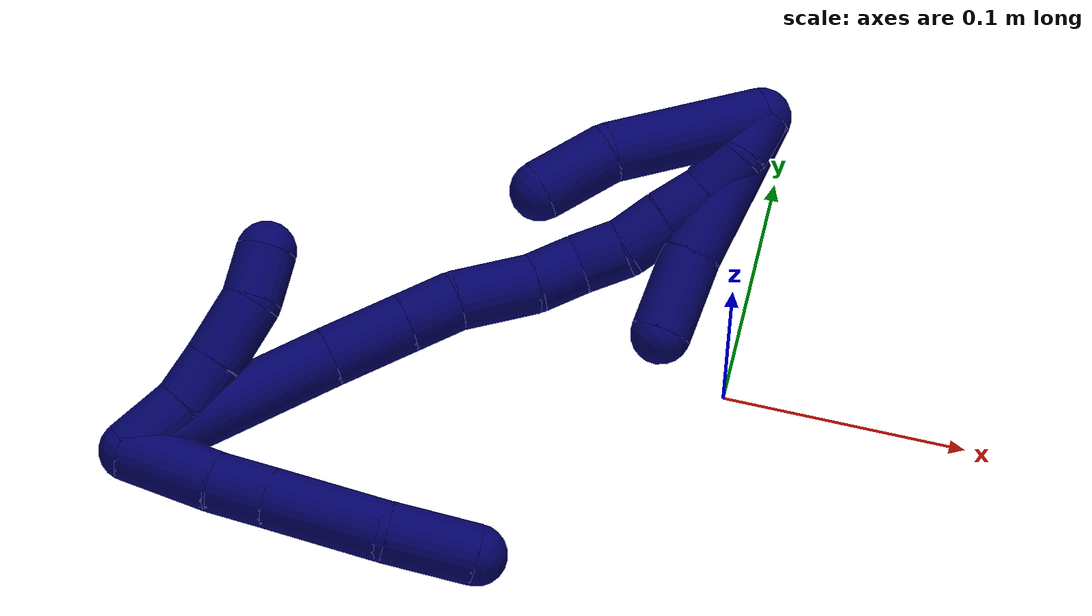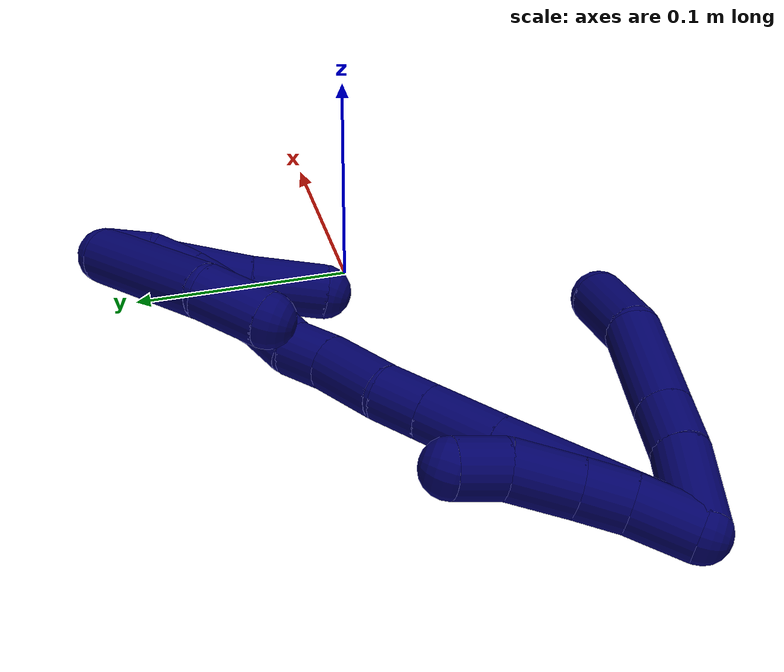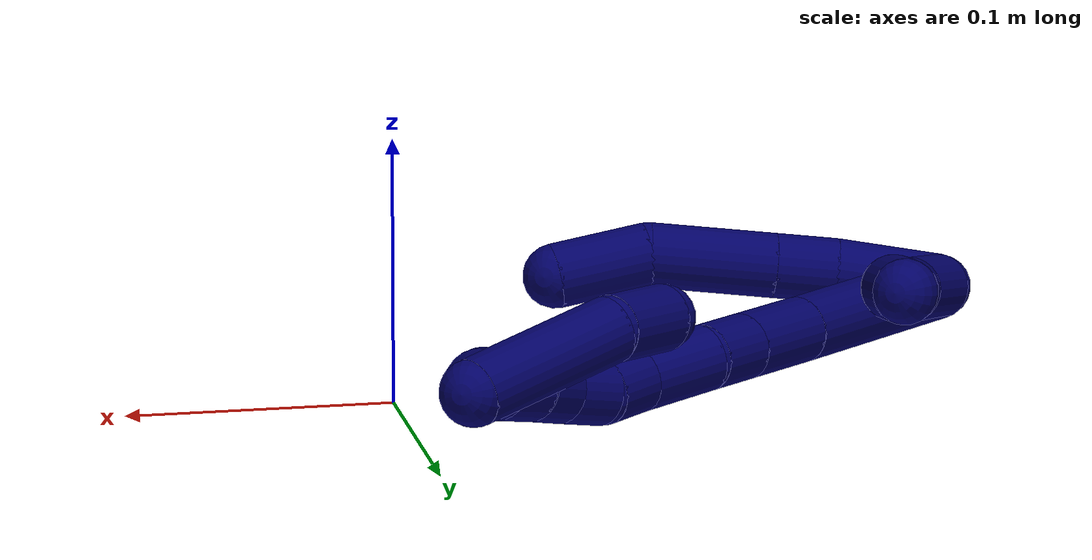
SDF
<sdf version="1.7">
 <world name="default">
  <model name="7">
   <static>0</static>
   <link name="7">
    <collision name="collision-cylinder-e_1_2_8">
     <pose>-0.014457 0.011866 0.00721 -1.02481 -0.805597 0.470497</pose>
     <geometry><cylinder><radius>0.0125</radius><length>0.040088</length></cylinder></geometry>
     <surface>
      <friction><ode><mu>1.16</mu><mu2>1.16</mu2><slip1>0</slip1><slip2>0</slip2></ode></friction>
      <contact><ode><kp>1e+06</kp><kd>1</kd><max_vel>0</max_vel><min_depth>0.001</min_depth></ode></contact>
     </surface>
    </collision>
    <visual name="visual-cylinder-e_1_2_8">
     <pose>-0.014457 0.011866 0.00721 -1.02481 -0.805597 0.470497</pose>
     <geometry><cylinder><radius>0.0125</radius><length>0.040088</length></cylinder></geometry>
     <material><ambient>0.003922 0 0.403922 1</ambient></material>
    </visual>
    <collision name="collision-cylinder-e_2_8_9">
     <pose>-0.037646 0.030041 0.019657 -0.87796 -0.81676 0.400885</pose>
     <geometry><cylinder><radius>0.0125</radius><length>0.023958</length></cylinder></geometry>
     <surface>
      <friction><ode><mu>1.16</mu><mu2>1.16</mu2><slip1>0</slip1><slip2>0</slip2></ode></friction>
      <contact><ode><kp>1e+06</kp><kd>1</kd><max_vel>0</max_vel><min_depth>0.001</min_depth></ode></contact>
     </surface>
    </collision>
    <visual name="visual-cylinder-e_2_8_9">
     <pose>-0.037646 0.030041 0.019657 -0.87796 -0.81676 0.400885</pose>
     <geometry><cylinder><radius>0.0125</radius><length>0.023958</length></cylinder></geometry>
     <material><ambient>0.003922 0 0.403922 1</ambient></material>
    </visual>
    <collision name="collision-cylinder-e_3_9_10">
     <pose>-0.064244 0.049251 0.035435 -0.88571 -0.820383 0.40678</pose>
     <geometry><cylinder><radius>0.0125</radius><length>0.048854</length></cylinder></geometry>
     <surface>
      <friction><ode><mu>1.16</mu><mu2>1.16</mu2><slip1>0</slip1><slip2>0</slip2></ode></friction>
      <contact><ode><kp>1e+06</kp><kd>1</kd><max_vel>0</max_vel><min_depth>0.001</min_depth></ode></contact>
     </surface>
    </collision>
    <visual name="visual-cylinder-e_3_9_10">
     <pose>-0.064244 0.049251 0.035435 -0.88571 -0.820383 0.40678</pose>
     <geometry><cylinder><radius>0.0125</radius><length>0.048854</length></cylinder></geometry>
     <material><ambient>0.003922 0 0.403922 1</ambient></material>
    </visual>
    <collision name="collision-cylinder-e_4_10_6">
     <pose>-0.097535 0.066612 0.055262 -0.447949 -0.981883 0.242366</pose>
     <geometry><cylinder><radius>0.0125</radius><length>0.037099</length></cylinder></geometry>
     <surface>
      <friction><ode><mu>1.16</mu><mu2>1.16</mu2><slip1>0</slip1><slip2>0</slip2></ode></friction>
      <contact><ode><kp>1e+06</kp><kd>1</kd><max_vel>0</max_vel><min_depth>0.001</min_depth></ode></contact>
     </surface>
    </collision>
    <visual name="visual-cylinder-e_4_10_6">
     <pose>-0.097535 0.066612 0.055262 -0.447949 -0.981883 0.242366</pose>
     <geometry><cylinder><radius>0.0125</radius><length>0.037099</length></cylinder></geometry>
     <material><ambient>0.003922 0 0.403922 1</ambient></material>
    </visual>
    <collision name="collision-cylinder-e_1_2_11">
     <pose>-0.001205 0.00082 0.014015 -0.058442 -0.085615 0.002504</pose>
     <geometry><cylinder><radius>0.0125</radius><length>0.028181</length></cylinder></geometry>
     <surface>
      <friction><ode><mu>1.16</mu><mu2>1.16</mu2><slip1>0</slip1><slip2>0</slip2></ode></friction>
      <contact><ode><kp>1e+06</kp><kd>1</kd><max_vel>0</max_vel><min_depth>0.001</min_depth></ode></contact>
     </surface>
    </collision>
    <visual name="visual-cylinder-e_1_2_11">
     <pose>-0.001205 0.00082 0.014015 -0.058442 -0.085615 0.002504</pose>
     <geometry><cylinder><radius>0.0125</radius><length>0.028181</length></cylinder></geometry>
     <material><ambient>0.003922 0 0.403922 1</ambient></material>
    </visual>
    <collision name="collision-cylinder-e_2_11_12">
     <pose>-0.000573 0.001448 0.038527 0.018291 0.173248 0.001588</pose>
     <geometry><cylinder><radius>0.0125</radius><length>0.021316</length></cylinder></geometry>
     <surface>
      <friction><ode><mu>1.16</mu><mu2>1.16</mu2><slip1>0</slip1><slip2>0</slip2></ode></friction>
      <contact><ode><kp>1e+06</kp><kd>1</kd><max_vel>0</max_vel><min_depth>0.001</min_depth></ode></contact>
     </surface>
    </collision>
    <visual name="visual-cylinder-e_2_11_12">
     <pose>-0.000573 0.001448 0.038527 0.018291 0.173248 0.001588</pose>
     <geometry><cylinder><radius>0.0125</radius><length>0.021316</length></cylinder></geometry>
     <material><ambient>0.003922 0 0.403922 1</ambient></material>
    </visual>
    <collision name="collision-cylinder-e_3_12_13">
     <pose>0.004423 0.000766 0.063006 0.035002 0.221997 0.003902</pose>
     <geometry><cylinder><radius>0.0125</radius><length>0.028687</length></cylinder></geometry>
     <surface>
      <friction><ode><mu>1.16</mu><mu2>1.16</mu2><slip1>0</slip1><slip2>0</slip2></ode></friction>
      <contact><ode><kp>1e+06</kp><kd>1</kd><max_vel>0</max_vel><min_depth>0.001</min_depth></ode></contact>
     </surface>
    </collision>
    <visual name="visual-cylinder-e_3_12_13">
     <pose>0.004423 0.000766 0.063006 0.035002 0.221997 0.003902</pose>
     <geometry><cylinder><radius>0.0125</radius><length>0.028687</length></cylinder></geometry>
     <material><ambient>0.003922 0 0.403922 1</ambient></material>
    </visual>
    <collision name="collision-cylinder-e_4_13_5">
     <pose>0.012068 -0.002467 0.086545 0.279591 0.423961 0.060548</pose>
     <geometry><cylinder><radius>0.0125</radius><length>0.021817</length></cylinder></geometry>
     <surface>
      <friction><ode><mu>1.16</mu><mu2>1.16</mu2><slip1>0</slip1><slip2>0</slip2></ode></friction>
      <contact><ode><kp>1e+06</kp><kd>1</kd><max_vel>0</max_vel><min_depth>0.001</min_depth></ode></contact>
     </surface>
    </collision>
    <visual name="visual-cylinder-e_4_13_5">
     <pose>0.012068 -0.002467 0.086545 0.279591 0.423961 0.060548</pose>
     <geometry><cylinder><radius>0.0125</radius><length>0.021817</length></cylinder></geometry>
     <material><ambient>0.003922 0 0.403922 1</ambient></material>
    </visual>
    <collision name="collision-cylinder-e_1_2_14">
     <pose>-0.015392 0.001901 0.041704 -0.045548 -0.353221 0.00813</pose>
     <geometry><cylinder><radius>0.0125</radius><length>0.088989</length></cylinder></geometry>
     <surface>
      <friction><ode><mu>1.16</mu><mu2>1.16</mu2><slip1>0</slip1><slip2>0</slip2></ode></friction>
      <contact><ode><kp>1e+06</kp><kd>1</kd><max_vel>0</max_vel><min_depth>0.001</min_depth></ode></contact>
     </surface>
    </collision>
    <visual name="visual-cylinder-e_1_2_14">
     <pose>-0.015392 0.001901 0.041704 -0.045548 -0.353221 0.00813</pose>
     <geometry><cylinder><radius>0.0125</radius><length>0.088989</length></cylinder></geometry>
     <material><ambient>0.003922 0 0.403922 1</ambient></material>
    </visual>
    <collision name="collision-cylinder-e_2_14_15">
     <pose>-0.036958 0.004736 0.099367 -0.058483 -0.368617 0.010906</pose>
     <geometry><cylinder><radius>0.0125</radius><length>0.034275</length></cylinder></geometry>
     <surface>
      <friction><ode><mu>1.16</mu><mu2>1.16</mu2><slip1>0</slip1><slip2>0</slip2></ode></friction>
      <contact><ode><kp>1e+06</kp><kd>1</kd><max_vel>0</max_vel><min_depth>0.001</min_depth></ode></contact>
     </surface>
    </collision>
    <visual name="visual-cylinder-e_2_14_15">
     <pose>-0.036958 0.004736 0.099367 -0.058483 -0.368617 0.010906</pose>
     <geometry><cylinder><radius>0.0125</radius><length>0.034275</length></cylinder></geometry>
     <material><ambient>0.003922 0 0.403922 1</ambient></material>
    </visual>
    <collision name="collision-cylinder-e_3_15_16">
     <pose>-0.04721 0.006288 0.125855 -0.058546 -0.368819 0.010923</pose>
     <geometry><cylinder><radius>0.0125</radius><length>0.022614</length></cylinder></geometry>
     <surface>
      <friction><ode><mu>1.16</mu><mu2>1.16</mu2><slip1>0</slip1><slip2>0</slip2></ode></friction>
      <contact><ode><kp>1e+06</kp><kd>1</kd><max_vel>0</max_vel><min_depth>0.001</min_depth></ode></contact>
     </surface>
    </collision>
    <visual name="visual-cylinder-e_3_15_16">
     <pose>-0.04721 0.006288 0.125855 -0.058546 -0.368819 0.010923</pose>
     <geometry><cylinder><radius>0.0125</radius><length>0.022614</length></cylinder></geometry>
     <material><ambient>0.003922 0 0.403922 1</ambient></material>
    </visual>
    <collision name="collision-cylinder-e_4_16_17">
     <pose>-0.060154 0.00837 0.150317 -0.104809 -0.564322 0.030409</pose>
     <geometry><cylinder><radius>0.0125</radius><length>0.033162</length></cylinder></geometry>
     <surface>
      <friction><ode><mu>1.16</mu><mu2>1.16</mu2><slip1>0</slip1><slip2>0</slip2></ode></friction>
      <contact><ode><kp>1e+06</kp><kd>1</kd><max_vel>0</max_vel><min_depth>0.001</min_depth></ode></contact>
     </surface>
    </collision>
    <visual name="visual-cylinder-e_4_16_17">
     <pose>-0.060154 0.00837 0.150317 -0.104809 -0.564322 0.030409</pose>
     <geometry><cylinder><radius>0.0125</radius><length>0.033162</length></cylinder></geometry>
     <material><ambient>0.003922 0 0.403922 1</ambient></material>
    </visual>
    <collision name="collision-cylinder-e_5_17_18">
     <pose>-0.072971 0.01002 0.173809 -0.019254 -0.391702 0.00382</pose>
     <geometry><cylinder><radius>0.0125</radius><length>0.020689</length></cylinder></geometry>
     <surface>
      <friction><ode><mu>1.16</mu><mu2>1.16</mu2><slip1>0</slip1><slip2>0</slip2></ode></friction>
      <contact><ode><kp>1e+06</kp><kd>1</kd><max_vel>0</max_vel><min_depth>0.001</min_depth></ode></contact>
     </surface>
    </collision>
    <visual name="visual-cylinder-e_5_17_18">
     <pose>-0.072971 0.01002 0.173809 -0.019254 -0.391702 0.00382</pose>
     <geometry><cylinder><radius>0.0125</radius><length>0.020689</length></cylinder></geometry>
     <material><ambient>0.003922 0 0.403922 1</ambient></material>
    </visual>
    <collision name="collision-cylinder-e_6_18_19">
     <pose>-0.08058 0.013378 0.192223 -0.34414 -0.371047 0.065211</pose>
     <geometry><cylinder><radius>0.0125</radius><length>0.020186</length></cylinder></geometry>
     <surface>
      <friction><ode><mu>1.16</mu><mu2>1.16</mu2><slip1>0</slip1><slip2>0</slip2></ode></friction>
      <contact><ode><kp>1e+06</kp><kd>1</kd><max_vel>0</max_vel><min_depth>0.001</min_depth></ode></contact>
     </surface>
    </collision>
    <visual name="visual-cylinder-e_6_18_19">
     <pose>-0.08058 0.013378 0.192223 -0.34414 -0.371047 0.065211</pose>
     <geometry><cylinder><radius>0.0125</radius><length>0.020186</length></cylinder></geometry>
     <material><ambient>0.003922 0 0.403922 1</ambient></material>
    </visual>
    <collision name="collision-cylinder-e_7_19_20">
     <pose>-0.08555 0.018476 0.210812 -0.195223 -0.131295 0.012875</pose>
     <geometry><cylinder><radius>0.0125</radius><length>0.020018</length></cylinder></geometry>
     <surface>
      <friction><ode><mu>1.16</mu><mu2>1.16</mu2><slip1>0</slip1><slip2>0</slip2></ode></friction>
      <contact><ode><kp>1e+06</kp><kd>1</kd><max_vel>0</max_vel><min_depth>0.001</min_depth></ode></contact>
     </surface>
    </collision>
    <visual name="visual-cylinder-e_7_19_20">
     <pose>-0.08555 0.018476 0.210812 -0.195223 -0.131295 0.012875</pose>
     <geometry><cylinder><radius>0.0125</radius><length>0.020018</length></cylinder></geometry>
     <material><ambient>0.003922 0 0.403922 1</ambient></material>
    </visual>
    <collision name="collision-cylinder-e_8_20_21">
     <pose>-0.088869 0.022505 0.23014 -0.21585 -0.201677 0.021924</pose>
     <geometry><cylinder><radius>0.0125</radius><length>0.02005</length></cylinder></geometry>
     <surface>
      <friction><ode><mu>1.16</mu><mu2>1.16</mu2><slip1>0</slip1><slip2>0</slip2></ode></friction>
      <contact><ode><kp>1e+06</kp><kd>1</kd><max_vel>0</max_vel><min_depth>0.001</min_depth></ode></contact>
     </surface>
    </collision>
    <visual name="visual-cylinder-e_8_20_21">
     <pose>-0.088869 0.022505 0.23014 -0.21585 -0.201677 0.021924</pose>
     <geometry><cylinder><radius>0.0125</radius><length>0.02005</length></cylinder></geometry>
     <material><ambient>0.003922 0 0.403922 1</ambient></material>
    </visual>
    <collision name="collision-cylinder-e_9_21_22">
     <pose>-0.089856 0.025504 0.249646 -0.090145 0.102179 -0.004613</pose>
     <geometry><cylinder><radius>0.0125</radius><length>0.020009</length></cylinder></geometry>
     <surface>
      <friction><ode><mu>1.16</mu><mu2>1.16</mu2><slip1>0</slip1><slip2>0</slip2></ode></friction>
      <contact><ode><kp>1e+06</kp><kd>1</kd><max_vel>0</max_vel><min_depth>0.001</min_depth></ode></contact>
     </surface>
    </collision>
    <visual name="visual-cylinder-e_9_21_22">
     <pose>-0.089856 0.025504 0.249646 -0.090145 0.102179 -0.004613</pose>
     <geometry><cylinder><radius>0.0125</radius><length>0.020009</length></cylinder></geometry>
     <material><ambient>0.003922 0 0.403922 1</ambient></material>
    </visual>
    <collision name="collision-cylinder-e_10_22_1">
     <pose>-0.087179 0.024284 0.269194 0.216232 0.166347 0.018096</pose>
     <geometry><cylinder><radius>0.0125</radius><length>0.020008</length></cylinder></geometry>
     <surface>
      <friction><ode><mu>1.16</mu><mu2>1.16</mu2><slip1>0</slip1><slip2>0</slip2></ode></friction>
      <contact><ode><kp>1e+06</kp><kd>1</kd><max_vel>0</max_vel><min_depth>0.001</min_depth></ode></contact>
     </surface>
    </collision>
    <visual name="visual-cylinder-e_10_22_1">
     <pose>-0.087179 0.024284 0.269194 0.216232 0.166347 0.018096</pose>
     <geometry><cylinder><radius>0.0125</radius><length>0.020008</length></cylinder></geometry>
     <material><ambient>0.003922 0 0.403922 1</ambient></material>
    </visual>
    <collision name="collision-cylinder-e_1_1_23">
     <pose>-0.067264 0.022944 0.250212 -3.11444 0.567753 -3.04859</pose>
     <geometry><cylinder><radius>0.0125</radius><length>0.067912</length></cylinder></geometry>
     <surface>
      <friction><ode><mu>1.16</mu><mu2>1.16</mu2><slip1>0</slip1><slip2>0</slip2></ode></friction>
      <contact><ode><kp>1e+06</kp><kd>1</kd><max_vel>0</max_vel><min_depth>0.001</min_depth></ode></contact>
     </surface>
    </collision>
    <visual name="visual-cylinder-e_1_1_23">
     <pose>-0.067264 0.022944 0.250212 -3.11444 0.567753 -3.04859</pose>
     <geometry><cylinder><radius>0.0125</radius><length>0.067912</length></cylinder></geometry>
     <material><ambient>0.003922 0 0.403922 1</ambient></material>
    </visual>
    <collision name="collision-cylinder-e_2_23_4">
     <pose>-0.044643 0.022632 0.206193 3.07095 0.275283 2.64201</pose>
     <geometry><cylinder><radius>0.0125</radius><length>0.032088</length></cylinder></geometry>
     <surface>
      <friction><ode><mu>1.16</mu><mu2>1.16</mu2><slip1>0</slip1><slip2>0</slip2></ode></friction>
      <contact><ode><kp>1e+06</kp><kd>1</kd><max_vel>0</max_vel><min_depth>0.001</min_depth></ode></contact>
     </surface>
    </collision>
    <visual name="visual-cylinder-e_2_23_4">
     <pose>-0.044643 0.022632 0.206193 3.07095 0.275283 2.64201</pose>
     <geometry><cylinder><radius>0.0125</radius><length>0.032088</length></cylinder></geometry>
     <material><ambient>0.003922 0 0.403922 1</ambient></material>
    </visual>
    <collision name="collision-cylinder-e_1_1_24">
     <pose>-0.094257 0.025831 0.247706 -3.0244 -0.271795 2.33108</pose>
     <geometry><cylinder><radius>0.0125</radius><length>0.065067</length></cylinder></geometry>
     <surface>
      <friction><ode><mu>1.16</mu><mu2>1.16</mu2><slip1>0</slip1><slip2>0</slip2></ode></friction>
      <contact><ode><kp>1e+06</kp><kd>1</kd><max_vel>0</max_vel><min_depth>0.001</min_depth></ode></contact>
     </surface>
    </collision>
    <visual name="visual-cylinder-e_1_1_24">
     <pose>-0.094257 0.025831 0.247706 -3.0244 -0.271795 2.33108</pose>
     <geometry><cylinder><radius>0.0125</radius><length>0.065067</length></cylinder></geometry>
     <material><ambient>0.003922 0 0.403922 1</ambient></material>
    </visual>
    <collision name="collision-cylinder-e_2_24_3">
     <pose>-0.109042 0.032612 0.200496 -2.95019 -0.353759 2.15592</pose>
     <geometry><cylinder><radius>0.0125</radius><length>0.034933</length></cylinder></geometry>
     <surface>
      <friction><ode><mu>1.16</mu><mu2>1.16</mu2><slip1>0</slip1><slip2>0</slip2></ode></friction>
      <contact><ode><kp>1e+06</kp><kd>1</kd><max_vel>0</max_vel><min_depth>0.001</min_depth></ode></contact>
     </surface>
    </collision>
    <visual name="visual-cylinder-e_2_24_3">
     <pose>-0.109042 0.032612 0.200496 -2.95019 -0.353759 2.15592</pose>
     <geometry><cylinder><radius>0.0125</radius><length>0.034933</length></cylinder></geometry>
     <material><ambient>0.003922 0 0.403922 1</ambient></material>
    </visual>
    <collision name="collision-sphere-3">
     <pose>-0.115093 0.035729 0.184411 0 -0 0</pose>
     <geometry><sphere><radius>0.0125</radius></sphere></geometry>
     <surface>
      <friction><ode><mu>1.16</mu><mu2>1.16</mu2><slip1>0</slip1><slip2>0</slip2></ode></friction>
      <contact><ode><kp>1e+06</kp><kd>1</kd><max_vel>0</max_vel><min_depth>0.001</min_depth></ode></contact>
     </surface>
    </collision>
    <visual name="visual-sphere-3">
     <pose>-0.115093 0.035729 0.184411 0 -0 0</pose>
     <geometry><sphere><radius>0.0125</radius></sphere></geometry>
     <material><ambient>0.003922 0 0.403922 1</ambient></material>
    </visual>
    <collision name="collision-sphere-24">
     <pose>-0.102991 0.029495 0.216582 0 -0 0</pose>
     <geometry><sphere><radius>0.0125</radius></sphere></geometry>
     <surface>
      <friction><ode><mu>1.16</mu><mu2>1.16</mu2><slip1>0</slip1><slip2>0</slip2></ode></friction>
      <contact><ode><kp>1e+06</kp><kd>1</kd><max_vel>0</max_vel><min_depth>0.001</min_depth></ode></contact>
     </surface>
    </collision>
    <visual name="visual-sphere-24">
     <pose>-0.102991 0.029495 0.216582 0 -0 0</pose>
     <geometry><sphere><radius>0.0125</radius></sphere></geometry>
     <material><ambient>0.003922 0 0.403922 1</ambient></material>
    </visual>
    <collision name="collision-sphere-4">
     <pose>-0.040282 0.021542 0.190792 0 -0 0</pose>
     <geometry><sphere><radius>0.0125</radius></sphere></geometry>
     <surface>
      <friction><ode><mu>1.16</mu><mu2>1.16</mu2><slip1>0</slip1><slip2>0</slip2></ode></friction>
      <contact><ode><kp>1e+06</kp><kd>1</kd><max_vel>0</max_vel><min_depth>0.001</min_depth></ode></contact>
     </surface>
    </collision>
    <visual name="visual-sphere-4">
     <pose>-0.040282 0.021542 0.190792 0 -0 0</pose>
     <geometry><sphere><radius>0.0125</radius></sphere></geometry>
     <material><ambient>0.003922 0 0.403922 1</ambient></material>
    </visual>
    <collision name="collision-sphere-23">
     <pose>-0.049004 0.023721 0.221594 0 -0 0</pose>
     <geometry><sphere><radius>0.0125</radius></sphere></geometry>
     <surface>
      <friction><ode><mu>1.16</mu><mu2>1.16</mu2><slip1>0</slip1><slip2>0</slip2></ode></friction>
      <contact><ode><kp>1e+06</kp><kd>1</kd><max_vel>0</max_vel><min_depth>0.001</min_depth></ode></contact>
     </surface>
    </collision>
    <visual name="visual-sphere-23">
     <pose>-0.049004 0.023721 0.221594 0 -0 0</pose>
     <geometry><sphere><radius>0.0125</radius></sphere></geometry>
     <material><ambient>0.003922 0 0.403922 1</ambient></material>
    </visual>
    <collision name="collision-sphere-1">
     <pose>-0.085523 0.022167 0.278831 0 -0 0</pose>
     <geometry><sphere><radius>0.0125</radius></sphere></geometry>
     <surface>
      <friction><ode><mu>1.16</mu><mu2>1.16</mu2><slip1>0</slip1><slip2>0</slip2></ode></friction>
      <contact><ode><kp>1e+06</kp><kd>1</kd><max_vel>0</max_vel><min_depth>0.001</min_depth></ode></contact>
     </surface>
    </collision>
    <visual name="visual-sphere-1">
     <pose>-0.085523 0.022167 0.278831 0 -0 0</pose>
     <geometry><sphere><radius>0.0125</radius></sphere></geometry>
     <material><ambient>0.003922 0 0.403922 1</ambient></material>
    </visual>
    <collision name="collision-sphere-22">
     <pose>-0.088836 0.0264 0.259558 0 -0 0</pose>
     <geometry><sphere><radius>0.0125</radius></sphere></geometry>
     <surface>
      <friction><ode><mu>1.16</mu><mu2>1.16</mu2><slip1>0</slip1><slip2>0</slip2></ode></friction>
      <contact><ode><kp>1e+06</kp><kd>1</kd><max_vel>0</max_vel><min_depth>0.001</min_depth></ode></contact>
     </surface>
    </collision>
    <visual name="visual-sphere-22">
     <pose>-0.088836 0.0264 0.259558 0 -0 0</pose>
     <geometry><sphere><radius>0.0125</radius></sphere></geometry>
     <material><ambient>0.003922 0 0.403922 1</ambient></material>
    </visual>
    <collision name="collision-sphere-21">
     <pose>-0.090877 0.024609 0.239734 0 -0 0</pose>
     <geometry><sphere><radius>0.0125</radius></sphere></geometry>
     <surface>
      <friction><ode><mu>1.16</mu><mu2>1.16</mu2><slip1>0</slip1><slip2>0</slip2></ode></friction>
      <contact><ode><kp>1e+06</kp><kd>1</kd><max_vel>0</max_vel><min_depth>0.001</min_depth></ode></contact>
     </surface>
    </collision>
    <visual name="visual-sphere-21">
     <pose>-0.090877 0.024609 0.239734 0 -0 0</pose>
     <geometry><sphere><radius>0.0125</radius></sphere></geometry>
     <material><ambient>0.003922 0 0.403922 1</ambient></material>
    </visual>
    <collision name="collision-sphere-11">
     <pose>-0.00241 0.00164 0.02803 0 -0 0</pose>
     <geometry><sphere><radius>0.0125</radius></sphere></geometry>
     <surface>
      <friction><ode><mu>1.16</mu><mu2>1.16</mu2><slip1>0</slip1><slip2>0</slip2></ode></friction>
      <contact><ode><kp>1e+06</kp><kd>1</kd><max_vel>0</max_vel><min_depth>0.001</min_depth></ode></contact>
     </surface>
    </collision>
    <visual name="visual-sphere-11">
     <pose>-0.00241 0.00164 0.02803 0 -0 0</pose>
     <geometry><sphere><radius>0.0125</radius></sphere></geometry>
     <material><ambient>0.003922 0 0.403922 1</ambient></material>
    </visual>
    <collision name="collision-sphere-6">
     <pose>-0.112959 0.071075 0.064549 0 -0 0</pose>
     <geometry><sphere><radius>0.0125</radius></sphere></geometry>
     <surface>
      <friction><ode><mu>1.16</mu><mu2>1.16</mu2><slip1>0</slip1><slip2>0</slip2></ode></friction>
      <contact><ode><kp>1e+06</kp><kd>1</kd><max_vel>0</max_vel><min_depth>0.001</min_depth></ode></contact>
     </surface>
    </collision>
    <visual name="visual-sphere-6">
     <pose>-0.112959 0.071075 0.064549 0 -0 0</pose>
     <geometry><sphere><radius>0.0125</radius></sphere></geometry>
     <material><ambient>0.003922 0 0.403922 1</ambient></material>
    </visual>
    <collision name="collision-sphere-10">
     <pose>-0.08211 0.06215 0.045975 0 -0 0</pose>
     <geometry><sphere><radius>0.0125</radius></sphere></geometry>
     <surface>
      <friction><ode><mu>1.16</mu><mu2>1.16</mu2><slip1>0</slip1><slip2>0</slip2></ode></friction>
      <contact><ode><kp>1e+06</kp><kd>1</kd><max_vel>0</max_vel><min_depth>0.001</min_depth></ode></contact>
     </surface>
    </collision>
    <visual name="visual-sphere-10">
     <pose>-0.08211 0.06215 0.045975 0 -0 0</pose>
     <geometry><sphere><radius>0.0125</radius></sphere></geometry>
     <material><ambient>0.003922 0 0.403922 1</ambient></material>
    </visual>
    <collision name="collision-sphere-9">
     <pose>-0.046378 0.036351 0.024895 0 -0 0</pose>
     <geometry><sphere><radius>0.0125</radius></sphere></geometry>
     <surface>
      <friction><ode><mu>1.16</mu><mu2>1.16</mu2><slip1>0</slip1><slip2>0</slip2></ode></friction>
      <contact><ode><kp>1e+06</kp><kd>1</kd><max_vel>0</max_vel><min_depth>0.001</min_depth></ode></contact>
     </surface>
    </collision>
    <visual name="visual-sphere-9">
     <pose>-0.046378 0.036351 0.024895 0 -0 0</pose>
     <geometry><sphere><radius>0.0125</radius></sphere></geometry>
     <material><ambient>0.003922 0 0.403922 1</ambient></material>
    </visual>
    <collision name="collision-sphere-2">
     <geometry><sphere><radius>0.0125</radius></sphere></geometry>
     <surface>
      <friction><ode><mu>1.16</mu><mu2>1.16</mu2><slip1>0</slip1><slip2>0</slip2></ode></friction>
      <contact><ode><kp>1e+06</kp><kd>1</kd><max_vel>0</max_vel><min_depth>0.001</min_depth></ode></contact>
     </surface>
    </collision>
    <visual name="visual-sphere-2">
     <geometry><sphere><radius>0.0125</radius></sphere></geometry>
     <material><ambient>0.003922 0 0.403922 1</ambient></material>
    </visual>
    <collision name="collision-sphere-19">
     <pose>-0.08424 0.016551 0.201077 0 -0 0</pose>
     <geometry><sphere><radius>0.0125</radius></sphere></geometry>
     <surface>
      <friction><ode><mu>1.16</mu><mu2>1.16</mu2><slip1>0</slip1><slip2>0</slip2></ode></friction>
      <contact><ode><kp>1e+06</kp><kd>1</kd><max_vel>0</max_vel><min_depth>0.001</min_depth></ode></contact>
     </surface>
    </collision>
    <visual name="visual-sphere-19">
     <pose>-0.08424 0.016551 0.201077 0 -0 0</pose>
     <geometry><sphere><radius>0.0125</radius></sphere></geometry>
     <material><ambient>0.003922 0 0.403922 1</ambient></material>
    </visual>
    <collision name="collision-sphere-8">
     <pose>-0.028914 0.023731 0.014419 0 -0 0</pose>
     <geometry><sphere><radius>0.0125</radius></sphere></geometry>
     <surface>
      <friction><ode><mu>1.16</mu><mu2>1.16</mu2><slip1>0</slip1><slip2>0</slip2></ode></friction>
      <contact><ode><kp>1e+06</kp><kd>1</kd><max_vel>0</max_vel><min_depth>0.001</min_depth></ode></contact>
     </surface>
    </collision>
    <visual name="visual-sphere-8">
     <pose>-0.028914 0.023731 0.014419 0 -0 0</pose>
     <geometry><sphere><radius>0.0125</radius></sphere></geometry>
     <material><ambient>0.003922 0 0.403922 1</ambient></material>
    </visual>
    <collision name="collision-sphere-12">
     <pose>0.001265 0.001256 0.049023 0 -0 0</pose>
     <geometry><sphere><radius>0.0125</radius></sphere></geometry>
     <surface>
      <friction><ode><mu>1.16</mu><mu2>1.16</mu2><slip1>0</slip1><slip2>0</slip2></ode></friction>
      <contact><ode><kp>1e+06</kp><kd>1</kd><max_vel>0</max_vel><min_depth>0.001</min_depth></ode></contact>
     </surface>
    </collision>
    <visual name="visual-sphere-12">
     <pose>0.001265 0.001256 0.049023 0 -0 0</pose>
     <geometry><sphere><radius>0.0125</radius></sphere></geometry>
     <material><ambient>0.003922 0 0.403922 1</ambient></material>
    </visual>
    <collision name="collision-sphere-13">
     <pose>0.007581 0.000277 0.076989 0 -0 0</pose>
     <geometry><sphere><radius>0.0125</radius></sphere></geometry>
     <surface>
      <friction><ode><mu>1.16</mu><mu2>1.16</mu2><slip1>0</slip1><slip2>0</slip2></ode></friction>
      <contact><ode><kp>1e+06</kp><kd>1</kd><max_vel>0</max_vel><min_depth>0.001</min_depth></ode></contact>
     </surface>
    </collision>
    <visual name="visual-sphere-13">
     <pose>0.007581 0.000277 0.076989 0 -0 0</pose>
     <geometry><sphere><radius>0.0125</radius></sphere></geometry>
     <material><ambient>0.003922 0 0.403922 1</ambient></material>
    </visual>
    <collision name="collision-sphere-5">
     <pose>0.016556 -0.005211 0.096101 0 -0 0</pose>
     <geometry><sphere><radius>0.0125</radius></sphere></geometry>
     <surface>
      <friction><ode><mu>1.16</mu><mu2>1.16</mu2><slip1>0</slip1><slip2>0</slip2></ode></friction>
      <contact><ode><kp>1e+06</kp><kd>1</kd><max_vel>0</max_vel><min_depth>0.001</min_depth></ode></contact>
     </surface>
    </collision>
    <visual name="visual-sphere-5">
     <pose>0.016556 -0.005211 0.096101 0 -0 0</pose>
     <geometry><sphere><radius>0.0125</radius></sphere></geometry>
     <material><ambient>0.003922 0 0.403922 1</ambient></material>
    </visual>
    <collision name="collision-sphere-14">
     <pose>-0.030783 0.003802 0.083408 0 -0 0</pose>
     <geometry><sphere><radius>0.0125</radius></sphere></geometry>
     <surface>
      <friction><ode><mu>1.16</mu><mu2>1.16</mu2><slip1>0</slip1><slip2>0</slip2></ode></friction>
      <contact><ode><kp>1e+06</kp><kd>1</kd><max_vel>0</max_vel><min_depth>0.001</min_depth></ode></contact>
     </surface>
    </collision>
    <visual name="visual-sphere-14">
     <pose>-0.030783 0.003802 0.083408 0 -0 0</pose>
     <geometry><sphere><radius>0.0125</radius></sphere></geometry>
     <material><ambient>0.003922 0 0.403922 1</ambient></material>
    </visual>
    <collision name="collision-sphere-15">
     <pose>-0.043133 0.005671 0.115326 0 -0 0</pose>
     <geometry><sphere><radius>0.0125</radius></sphere></geometry>
     <surface>
      <friction><ode><mu>1.16</mu><mu2>1.16</mu2><slip1>0</slip1><slip2>0</slip2></ode></friction>
      <contact><ode><kp>1e+06</kp><kd>1</kd><max_vel>0</max_vel><min_depth>0.001</min_depth></ode></contact>
     </surface>
    </collision>
    <visual name="visual-sphere-15">
     <pose>-0.043133 0.005671 0.115326 0 -0 0</pose>
     <geometry><sphere><radius>0.0125</radius></sphere></geometry>
     <material><ambient>0.003922 0 0.403922 1</ambient></material>
    </visual>
    <collision name="collision-sphere-16">
     <pose>-0.051286 0.006905 0.136383 0 -0 0</pose>
     <geometry><sphere><radius>0.0125</radius></sphere></geometry>
     <surface>
      <friction><ode><mu>1.16</mu><mu2>1.16</mu2><slip1>0</slip1><slip2>0</slip2></ode></friction>
      <contact><ode><kp>1e+06</kp><kd>1</kd><max_vel>0</max_vel><min_depth>0.001</min_depth></ode></contact>
     </surface>
    </collision>
    <visual name="visual-sphere-16">
     <pose>-0.051286 0.006905 0.136383 0 -0 0</pose>
     <geometry><sphere><radius>0.0125</radius></sphere></geometry>
     <material><ambient>0.003922 0 0.403922 1</ambient></material>
    </visual>
    <collision name="collision-sphere-17">
     <pose>-0.069022 0.009836 0.16425 0 -0 0</pose>
     <geometry><sphere><radius>0.0125</radius></sphere></geometry>
     <surface>
      <friction><ode><mu>1.16</mu><mu2>1.16</mu2><slip1>0</slip1><slip2>0</slip2></ode></friction>
      <contact><ode><kp>1e+06</kp><kd>1</kd><max_vel>0</max_vel><min_depth>0.001</min_depth></ode></contact>
     </surface>
    </collision>
    <visual name="visual-sphere-17">
     <pose>-0.069022 0.009836 0.16425 0 -0 0</pose>
     <geometry><sphere><radius>0.0125</radius></sphere></geometry>
     <material><ambient>0.003922 0 0.403922 1</ambient></material>
    </visual>
    <collision name="collision-sphere-18">
     <pose>-0.07692 0.010204 0.183368 0 -0 0</pose>
     <geometry><sphere><radius>0.0125</radius></sphere></geometry>
     <surface>
      <friction><ode><mu>1.16</mu><mu2>1.16</mu2><slip1>0</slip1><slip2>0</slip2></ode></friction>
      <contact><ode><kp>1e+06</kp><kd>1</kd><max_vel>0</max_vel><min_depth>0.001</min_depth></ode></contact>
     </surface>
    </collision>
    <visual name="visual-sphere-18">
     <pose>-0.07692 0.010204 0.183368 0 -0 0</pose>
     <geometry><sphere><radius>0.0125</radius></sphere></geometry>
     <material><ambient>0.003922 0 0.403922 1</ambient></material>
    </visual>
    <collision name="collision-sphere-20">
     <pose>-0.086861 0.020401 0.220546 0 -0 0</pose>
     <geometry><sphere><radius>0.0125</radius></sphere></geometry>
     <surface>
      <friction><ode><mu>1.16</mu><mu2>1.16</mu2><slip1>0</slip1><slip2>0</slip2></ode></friction>
      <contact><ode><kp>1e+06</kp><kd>1</kd><max_vel>0</max_vel><min_depth>0.001</min_depth></ode></contact>
     </surface>
    </collision>
    <visual name="visual-sphere-20">
     <pose>-0.086861 0.020401 0.220546 0 -0 0</pose>
     <geometry><sphere><radius>0.0125</radius></sphere></geometry>
     <material><ambient>0.003922 0 0.403922 1</ambient></material>
    </visual>
    <inertial>
     <pose>-0.052945 0.018994 0.130431 0 -0 0</pose>
     <mass>0.75</mass>
     <inertia><ixx>7.1e-05</ixx><ixy>0</ixy><ixz>0</ixz><iyy>0.000203</iyy><iyz>0</iyz><izz>3.7e-05</izz></inertia>
    </inertial>
   </link>
   <pose>-0.226636 -0.08291 0.01243 1.35313 -0.582549 2.71432</pose>
  </model>
 </world>
</sdf>
